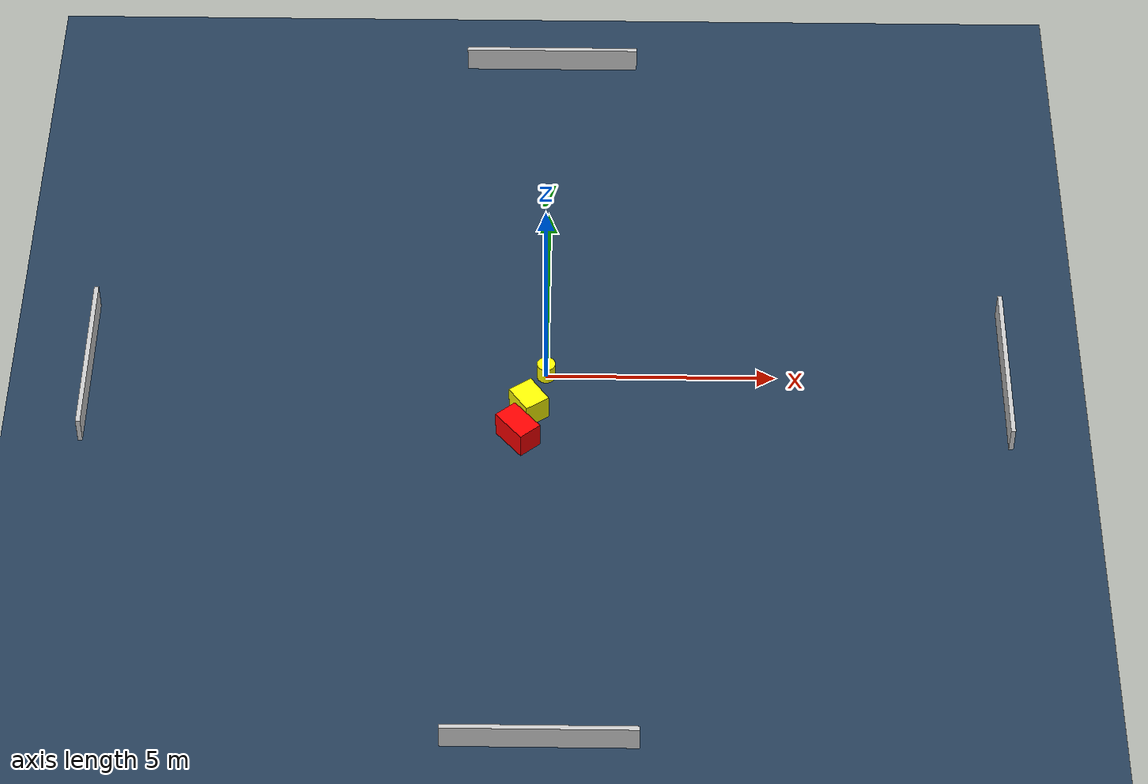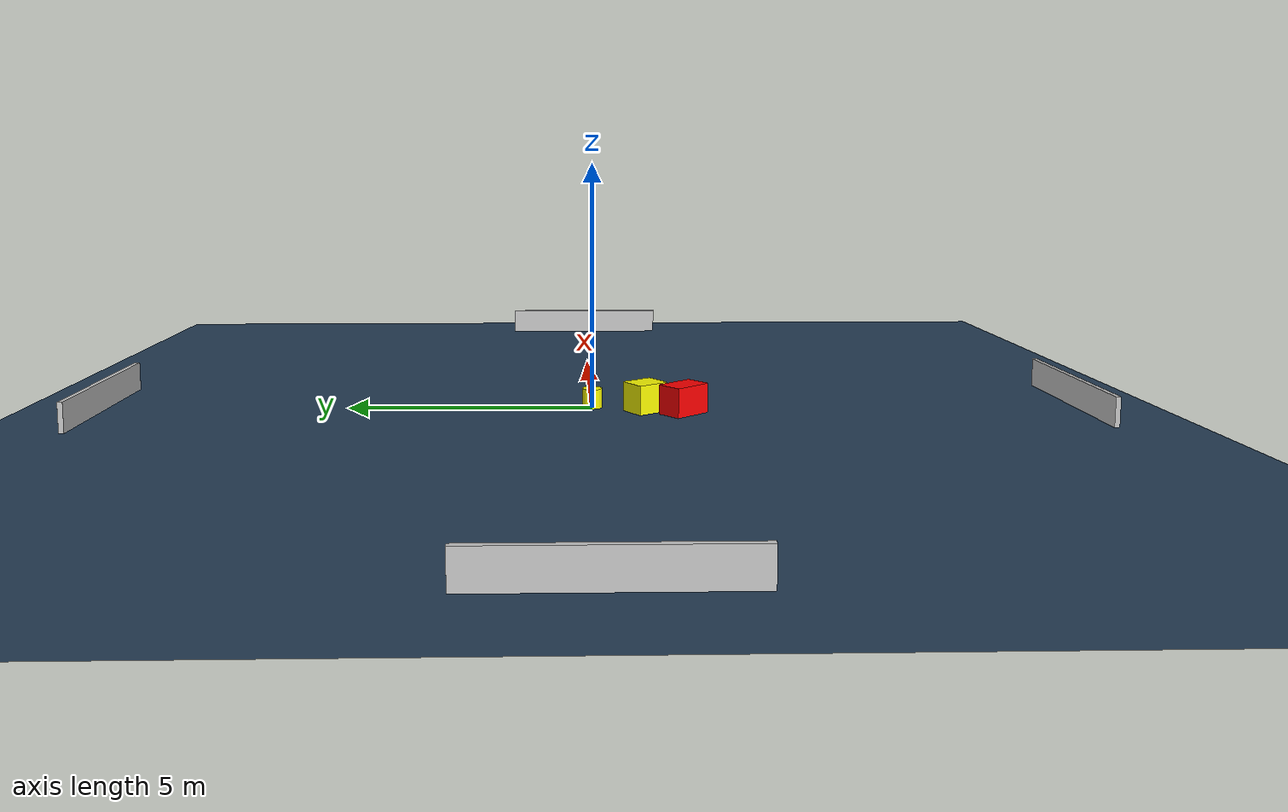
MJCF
<?xml version="1.0" ?>
<mujoco model="generated_environment">
  <option timestep="0.01" integrator="RK4" cone="elliptic"/>
  <default>
    <geom density="1"/>
  </default>
  <asset>
    <texture builtin="gradient" height="3072" name="skybox" rgb1="0.3 0.5 0.7" rgb2="0 0 0" type="skybox" width="512"/>
    <texture builtin="checker" height="300" name="groundplane" rgb1="0.2 0.3 0.4" rgb2="0.1 0.2 0.3" type="2d" width="300"/>
    <material name="groundplane" reflectance="0.2" texrepeat="5 5" texture="groundplane"/>
  </asset>
  <worldbody>
    <light dir="0 0 -1" directional="true" pos="0 0 1.5"/>
    <geom condim="3" friction="0.5 0.005 0.001" material="groundplane" name="floor" pos="0 0 0" size="0 0 0.05" type="plane"/>
    <body name="walls">
      <geom name="wall_1" condim="4" pos="-10.0 0.0 0.3" rgba="0.800000011920929 0.800000011920929 0.800000011920929 1.0" size="0.05 2.0 0.3" type="box"/>
      <geom name="wall_2" condim="4" pos="10.0 0.0 0.3" rgba="0.800000011920929 0.800000011920929 0.800000011920929 1.0" size="0.05 2.0 0.3" type="box"/>
      <geom name="wall_3" condim="4" pos="0.0 -10.0 0.3" rgba="0.800000011920929 0.800000011920929 0.800000011920929 1.0" size="2.0 0.05 0.3" type="box"/>
      <geom name="wall_4" condim="4" pos="0.0 10.0 0.3" rgba="0.800000011920929 0.800000011920929 0.800000011920929 1.0" size="2.0 0.05 0.3" type="box"/>
    </body>
    <body name="robot">
      <joint name="joint_x" type="slide" pos="0 0 0" axis="1 0 0"/>
      <joint name="joint_y" type="slide" pos="0 0 0" axis="0 1 0"/>
      <geom name="robot" type="cylinder" pos="0.0 0.0 0.2" size="0.2 0.2 0.0" mass="5.0" friction="1.0 0.005 0.0001" condim="4" rgba="1.0 1.0 0.0 1.0"/>
    </body>
    <body name="obstacle_1_movable">
      <geom name="obstacle_1_movable" condim="4" pos="-0.36251000881362566 -1.0643575338887687 0.3" euler="0 0 34.321316165423625" friction="0.0 0.005 0.001" rgba="1.0 1.0 0.0 1.0" size="0.28679556979932613 0.34252864667210897 0.3" type="box" mass="0.1"/>
      <joint type="free"/>
    </body>
    <body name="obstacle_2_static">
      <geom name="obstacle_2_static" condim="4" pos="-0.5851963402916237 -1.8278672933679487 0.3" euler="0 0 40.16748471061104" friction="0.0 0.005 0.001" rgba="1.0 0.0 0.0 1.0" size="0.2692902467813182 0.4265010927619114 0.3" type="box"/>
    </body>
  </worldbody>
  <actuator>
    <motor name="actuator_x" joint="joint_x" gear="1" ctrlrange="-1 1"/>
    <motor name="actuator_y" joint="joint_y" gear="1" ctrlrange="-1 1"/>
  </actuator>
</mujoco>
